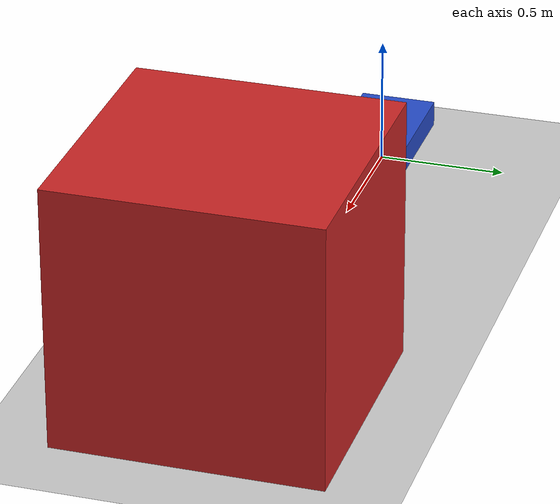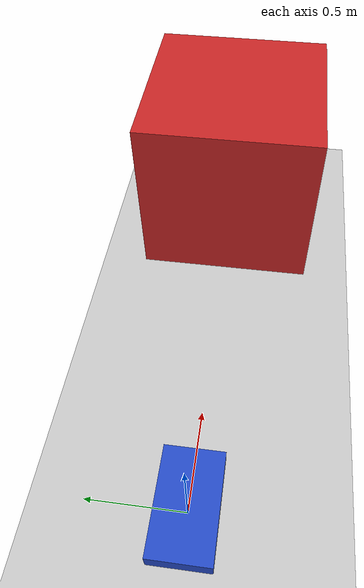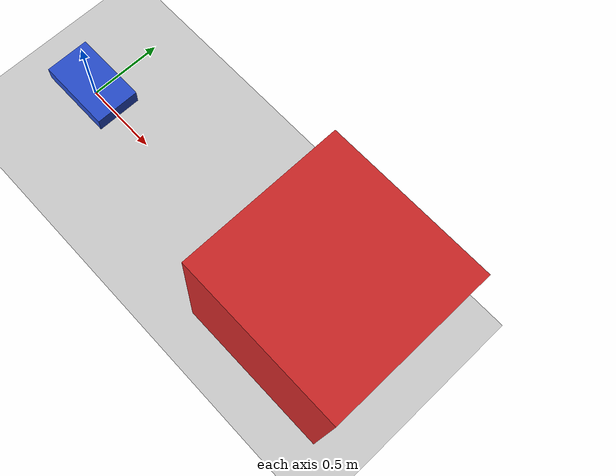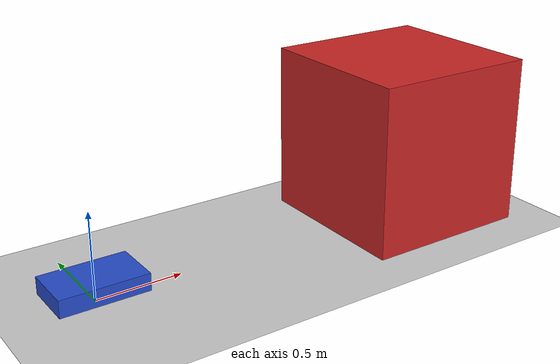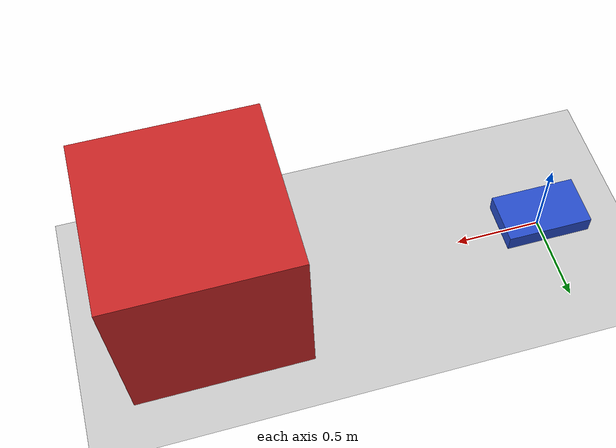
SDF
<?xml version="1.0" ?>
<sdf version="1.6">
  <world name="default">

    <!-- Physics -->
    <physics type="ode">
      <max_step_size>0.001</max_step_size>
      <real_time_factor>1</real_time_factor>
      <real_time_update_rate>1000</real_time_update_rate>
      <ode>
        <solver>
          <type>quick</type>
          <iters>150</iters>
          <precon_iters>0</precon_iters>
          <sor>1.400000</sor>
          <use_dynamic_moi_rescaling>1</use_dynamic_moi_rescaling>
        </solver>
        <constraints>
          <cfm>0.00001</cfm>
          <erp>0.2</erp>
          <contact_max_correcting_vel>2000.000000</contact_max_correcting_vel>
          <contact_surface_layer>0.01000</contact_surface_layer>
        </constraints>
      </ode>
    </physics>

    <!-- Gravity -->
    <gravity>0 0 -9.8</gravity>

    <!-- Sun light (old style include) -->
    <include>
      <uri>model://sun</uri>
    </include>

    <!-- Ground plane (old style include) -->
    <include>
      <uri>model://ground_plane</uri>
    </include>

    <!-- A static box with Ogre material -->
    <model name="colored_box">
      <static>true</static>
      <pose>2 0 0.5 0 0 0</pose>
      <link name="link">
        <collision name="collision">
          <geometry>
            <box><size>1 1 1</size></box>
          </geometry>
        </collision>
        <visual name="visual">
          <geometry>
            <box><size>1 1 1</size></box>
          </geometry>
          <material>
            <script>
              <uri>file://media/materials/scripts/gazebo.material</uri>
              <name>Gazebo/Red</name>
            </script>
          </material>
        </visual>
      </link>
    </model>

    <!-- Robot model with classic plugins and sensors -->
    <model name="my_robot">
      <pose>0 0 0.1 0 0 0</pose>

      <link name="base_link">
        <inertial>
          <mass>5.0</mass>
          <inertia>
            <ixx>0.1</ixx><ixy>0</ixy><ixz>0</ixz>
            <iyy>0.1</iyy><iyz>0</iyz>
            <izz>0.1</izz>
          </inertia>
        </inertial>
        <collision name="base_collision">
          <geometry><box><size>0.5 0.3 0.1</size></box></geometry>
        </collision>
        <visual name="base_visual">
          <geometry><box><size>0.5 0.3 0.1</size></box></geometry>
          <material>
            <script>
              <uri>file://media/materials/scripts/gazebo.material</uri>
              <name>Gazebo/Blue</name>
            </script>
          </material>
        </visual>

        <!-- IMU sensor with classic plugin -->
        <sensor name="imu_sensor" type="imu">
          <always_on>true</always_on>
          <update_rate>100</update_rate>
          <visualize>false</visualize>
          <imu>
            <angular_velocity>
              <x><noise type="gaussian"><mean>0</mean><stddev>0.009</stddev></noise></x>
              <y><noise type="gaussian"><mean>0</mean><stddev>0.009</stddev></noise></y>
              <z><noise type="gaussian"><mean>0</mean><stddev>0.009</stddev></noise></z>
            </angular_velocity>
            <linear_acceleration>
              <x><noise type="gaussian"><mean>0</mean><stddev>0.021</stddev></noise></x>
              <y><noise type="gaussian"><mean>0</mean><stddev>0.021</stddev></noise></y>
              <z><noise type="gaussian"><mean>0</mean><stddev>0.021</stddev></noise></z>
            </linear_acceleration>
          </imu>
          <plugin filename="libgazebo_ros_imu_sensor.so" name="imu_plugin">
            <ros>
              <namespace>/robot</namespace>
              <remapping>~/out:=imu</remapping>
            </ros>
            <initial_orientation_as_reference>false</initial_orientation_as_reference>
          </plugin>
        </sensor>

        <!-- Camera sensor with classic plugin -->
        <sensor name="camera" type="camera">
          <always_on>true</always_on>
          <update_rate>30</update_rate>
          <visualize>true</visualize>
          <camera name="front_camera">
            <horizontal_fov>1.3962634</horizontal_fov>
            <image>
              <width>800</width>
              <height>600</height>
              <format>R8G8B8</format>
            </image>
            <clip>
              <near>0.02</near>
              <far>300</far>
            </clip>
          </camera>
          <plugin filename="libgazebo_ros_camera.so" name="camera_plugin">
            <ros>
              <namespace>/robot</namespace>
            </ros>
            <camera_name>front_camera</camera_name>
            <frame_name>camera_link</frame_name>
          </plugin>
        </sensor>
      </link>

      <!-- Lidar link with ray sensor -->
      <link name="lidar_link">
        <pose>0.2 0 0.2 0 0 0</pose>
        <sensor name="lidar" type="ray">
          <always_on>true</always_on>
          <visualize>true</visualize>
          <update_rate>10</update_rate>
          <ray>
            <scan>
              <horizontal>
                <samples>360</samples>
                <resolution>1</resolution>
                <min_angle>-3.14159</min_angle>
                <max_angle>3.14159</max_angle>
              </horizontal>
            </scan>
            <range>
              <min>0.10</min>
              <max>30.0</max>
              <resolution>0.01</resolution>
            </range>
            <noise>
              <type>gaussian</type>
              <mean>0.0</mean>
              <stddev>0.01</stddev>
            </noise>
          </ray>
          <plugin filename="libgazebo_ros_ray_sensor.so" name="lidar_plugin">
            <ros>
              <namespace>/robot</namespace>
              <remapping>~/out:=scan</remapping>
            </ros>
            <output_type>sensor_msgs/LaserScan</output_type>
            <frame_name>lidar_link</frame_name>
          </plugin>
        </sensor>
      </link>

      <!-- Differential drive plugin -->
      <plugin filename="libgazebo_ros_diff_drive.so" name="diff_drive">
        <ros>
          <namespace>/robot</namespace>
        </ros>
        <left_joint>left_wheel_joint</left_joint>
        <right_joint>right_wheel_joint</right_joint>
        <wheel_separation>0.4</wheel_separation>
        <wheelDiameter>0.2</wheelDiameter>
        <max_wheel_acceleration>1.0</max_wheel_acceleration>
        <commandTopic>cmd_vel</commandTopic>
        <odometryTopic>odom</odometryTopic>
        <odometryFrame>odom</odometryFrame>
        <robotBaseFrame>base_link</robotBaseFrame>
        <publish_odom>true</publish_odom>
        <publish_odom_tf>true</publish_odom_tf>
        <update_rate>30</update_rate>
      </plugin>

      <!-- Joint state publisher plugin -->
      <plugin filename="libgazebo_ros_joint_state_publisher.so" name="joint_states">
        <ros>
          <namespace>/robot</namespace>
          <remapping>~/out:=joint_states</remapping>
        </ros>
        <update_rate>30</update_rate>
        <joint_name>left_wheel_joint</joint_name>
        <joint_name>right_wheel_joint</joint_name>
      </plugin>

      <!-- GPS plugin -->
      <plugin filename="libgazebo_ros_gps_sensor.so" name="gps_plugin">
        <ros>
          <namespace>/robot</namespace>
        </ros>
        <frame_name>gps_link</frame_name>
      </plugin>

    </model>

  </world>
</sdf>
